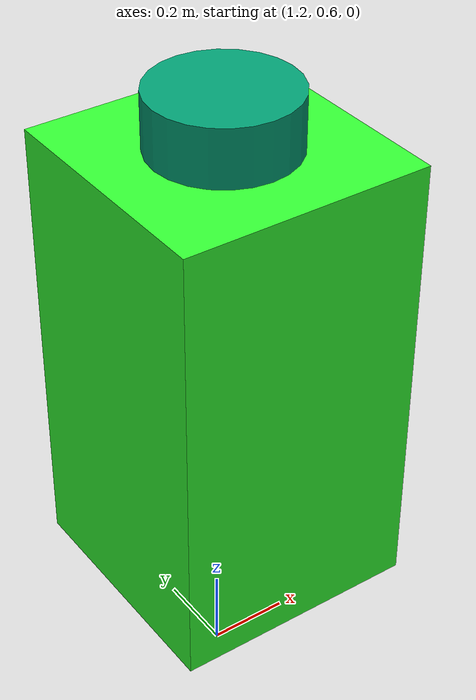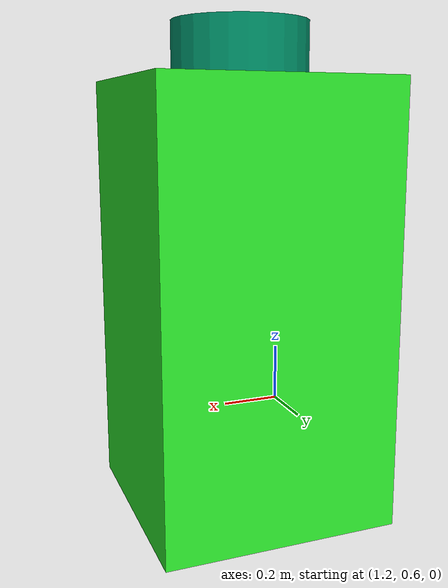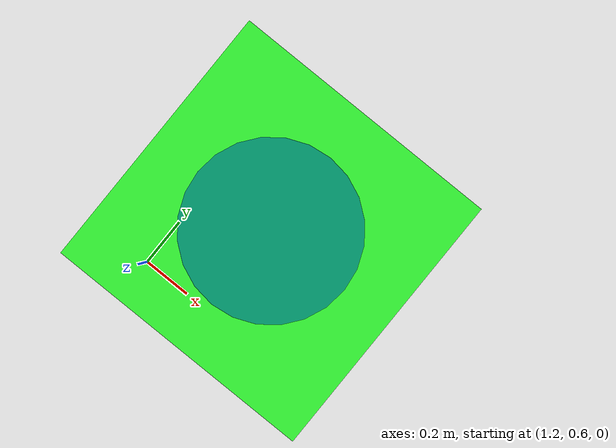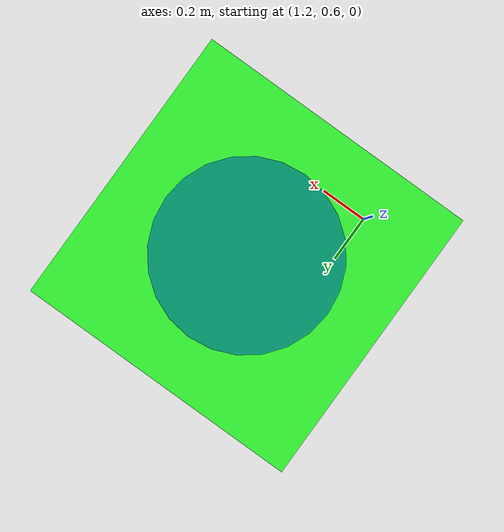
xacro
<?xml version="1.0"?>
<robot xmlns:xacro="http://www.ros.org/wiki/xacro"  name="robot">

    <!-- This is an example of a URDF. -->
    <!-- As we move through the file, new things to note will be pointed out. -->
    <!-- It's not meant an example of GOOD design, but an example of some of the various features of URDF/xacro. -->

    <!-- This will include all the contents of example_include.xacro first. Go check it out! -->
    <xacro:include filename="example_include.xacro" />

    <!-- This first link called "world" is empty -->
    <link name="world"></link>

    <!-- A simple fixed joint from our empty world link, to our base. -->
    <!-- The base origin is offset from the world origin. -->
    <joint name="base_joint" type="fixed">
        <origin xyz="1.5 1.0 0.5" rpy="0 0 0"/>
        <parent link="world"/>
        <child link="base_link"/>
    </joint>

    <!-- base_link is a large rectangular plate. Some things to note: -->
    <!-- - We set the visual origin Z to half the box height, so that the link origin sits at the bottom of the box -->
    <!-- - We set the collision to be identical to the visual -->
    <!-- - We specified the colour manually (but still need to enter a name) -->
    <!-- - We specified all the inertial parameters manually -->
    <link name="base_link">
        <visual>
            <origin xyz="0 0 0" rpy="0 0 0"/>
            <geometry>
                <box size="0.7 0.7 1.3" />
            </geometry>
            <material name="green">
                <color rgba="0.2 1 0.2 1"/>
            </material>
        </visual>
        <collision>
            <geometry>
                <box size="0.5 0.5 1" />
            </geometry>
        </collision>
        <inertial>
            <box size="0.5 0.5 1" />
            <mass value="12" />
            <inertia ixx="2.26" ixy="0.0" ixz="0.0" iyy="6.26" iyz="0.0" izz="8.5" />
        </inertial>
    </link>

    <xacro:include filename="lidar.xacro" />

    <xacro:include filename="example_gazebo.xacro" />

</robot>

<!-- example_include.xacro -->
<robot xmlns:xacro="http://www.ros.org/wiki/xacro" >

    <!-- This file is not a robot in and of itself, it just contains some useful tags that could be included in any robot -->

    <!-- Specify some colours -->

    <material name="white">
        <color rgba="1 1 1 1"/>
    </material>

    <material name="orange">
        <color rgba="1 0.3 0.1 1"/>
    </material>

    <material name="blue">
        <color rgba="0.2 0.2 1 1"/>
    </material>

    <!-- Specify some standard inertial calculations https://en.wikipedia.org/wiki/List_of_moments_of_inertia -->
    <!-- These make use of xacro's mathematical functionality -->

    <xacro:macro name="inertial_sphere" params="mass radius *origin">
        <inertial>
            <xacro:insert_block name="origin"/>
            <mass value="${mass}" />
            <inertia ixx="${(2/5) * mass * (radius*radius)}" ixy="0.0" ixz="0.0"
                    iyy="${(2/5) * mass * (radius*radius)}" iyz="0.0"
                    izz="${(2/5) * mass * (radius*radius)}" />
        </inertial>
    </xacro:macro>

    <xacro:macro name="inertial_box" params="mass x y z *origin">
        <inertial>
            <xacro:insert_block name="origin"/>
            <mass value="${mass}" />
            <inertia ixx="${(1/12) * mass * (y*y+z*z)}" ixy="0.0" ixz="0.0"
                    iyy="${(1/12) * mass * (x*x+z*z)}" iyz="0.0"
                    izz="${(1/12) * mass * (x*x+y*y)}" />
        </inertial>
    </xacro:macro>

    <xacro:macro name="inertial_cylinder" params="mass length radius *origin">
        <inertial>
            <xacro:insert_block name="origin"/>
            <mass value="${mass}" />
            <inertia ixx="${(1/12) * mass * (3*radius*radius + length*length)}" ixy="0.0" ixz="0.0"
                    iyy="${(1/12) * mass * (3*radius*radius + length*length)}" iyz="0.0"
                    izz="${(1/2) * mass * (radius*radius)}" />
        </inertial>
    </xacro:macro>

</robot>

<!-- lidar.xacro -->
<robot xmlns:xacro="http://www.ros.org/wiki/xacro"  name="robot">

<joint name="lidar_joint" type="fixed">
    <origin xyz="0 0 0.71" rpy="0 0 0"/>
    <parent link="base_link"/>
    <child link="lidar_link"/>
</joint>

<link name="lidar_link">
    <visual>
        <geometry>
            <cylinder length="0.2" radius="0.2" />
        </geometry>
    </visual>
    <collision>
        <geometry>
            <cylinder length="0.2" radius="0.2" />
        </geometry>
    </collision>
    <xacro:inertial_cylinder mass="0.1" length="0.04" radius="0.05">
        <origin xyz="0 0 0" rpy="0 0 0"/>
    </xacro:inertial_cylinder>
</link>

<gazebo reference="lidar_link">
    <sensor name="lidar_sensor" type="gpu_lidar">
        <pose>0 0 0.2 0 0 0</pose>
        <topic>lidar</topic>
        <update_rate>15</update_rate>
        <ray>
          <scan>
            <horizontal>
              <samples>1280</samples>
              <resolution>1</resolution>
              <min_angle>3.14159265359</min_angle>
              <max_angle>-3.14159265359</max_angle>
            </horizontal>
            <vertical>
              <samples>1</samples>
              <resolution>1</resolution>
              <min_angle>0</min_angle>
              <max_angle>0</max_angle>
            </vertical>
          </scan>
          <range>
            <min>0.0001</min>
            <max>10.0</max>
            <resolution>0.01</resolution>
          </range>
        </ray>
        <always_on>1</always_on>
        <visualize>true</visualize>
      </sensor>
</gazebo>

</robot>
